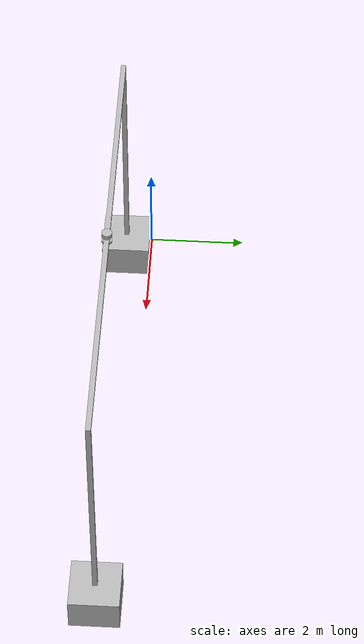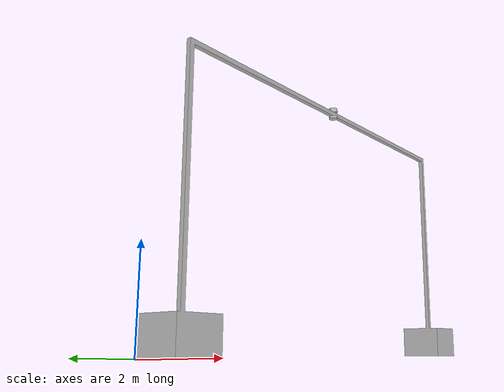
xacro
<?xml version="1.0" ?>
<robot name="cam_stand" xmlns:xacro="http://www.ros.org/wiki/xacro">

<xacro:include filename="$(find cam_stand_description)/urdf/materials.xacro" />
<xacro:include filename="$(find cam_stand_description)/urdf/cam_stand.trans" />
<xacro:include filename="$(find cam_stand_description)/urdf/cam_stand.gazebo" />
<link name="base_link">
  <inertial>
    <origin xyz="4.999999999999999 -0.5 0.8252473916895228" rpy="0 0 0"/>
    <mass value="13257.108656104332"/>
    <inertia ixx="26738.387069" iyy="285689.477069" izz="260916.062268" ixy="-0.0" iyz="0.0" ixz="-0.0"/>
  </inertial>
  <visual>
    <origin xyz="0 0 0" rpy="0 0 0"/>
    <geometry>
      <mesh filename="package://cam_stand_description/meshes/base_link.stl" scale="0.001 0.001 0.001"/>
    </geometry>
    <material name="silver"/>
  </visual>
  <collision>
    <origin xyz="0 0 0" rpy="0 0 0"/>
    <geometry>
      <mesh filename="package://cam_stand_description/meshes/base_link.stl" scale="0.001 0.001 0.001"/>
    </geometry>
  </collision>
</link>

<link name="camera_link_1">
  <inertial>
    <origin xyz="8.881784197001252e-16 0.0 0.08999999999999986" rpy="0 0 0"/>
    <mass value="38.53359739168728"/>
    <inertia ixx="0.371448" iyy="0.371448" izz="0.185443" ixy="-0.0" iyz="-0.0" ixz="0.0"/>
  </inertial>
  <visual>
    <origin xyz="-5.0 0.5 -5.65" rpy="0 0 0"/>
    <geometry>
      <mesh filename="package://cam_stand_description/meshes/camera_link_1.stl" scale="0.001 0.001 0.001"/>
    </geometry>
    <material name="silver"/>
  </visual>
  <collision>
    <origin xyz="-5.0 0.5 -5.65" rpy="0 0 0"/>
    <geometry>
      <mesh filename="package://cam_stand_description/meshes/camera_link_1.stl" scale="0.001 0.001 0.001"/>
    </geometry>
  </collision>
</link>

<joint name="Rigid 2" type="fixed">
  <origin xyz="5.0 -0.5 5.65" rpy="0 0 0"/>
  <parent link="base_link"/>
  <child link="camera_link_1"/>
</joint>

</robot>

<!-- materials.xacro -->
<robot name="cam_stand" xmlns:xacro="http://www.ros.org/wiki/xacro" >

<material name="silver">
  <color rgba="0.700 0.700 0.700 1.000"/>
</material>

</robot>
